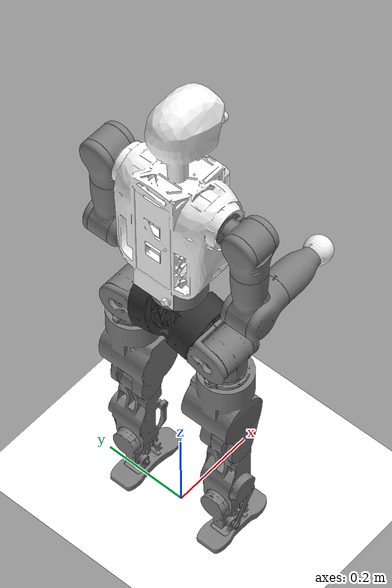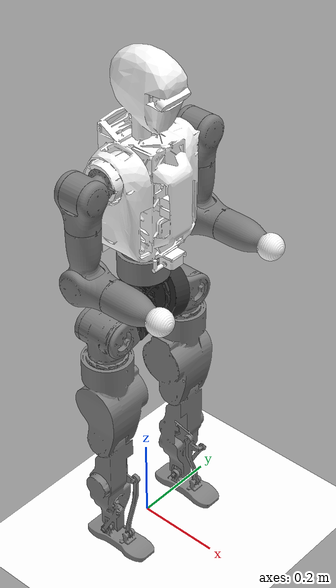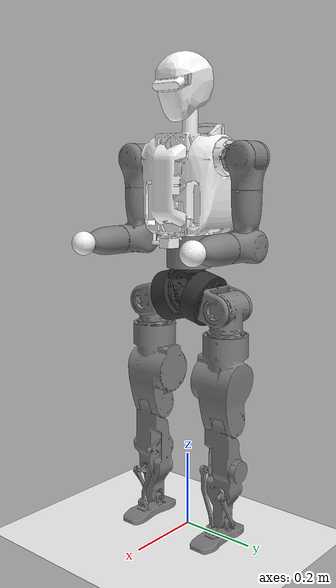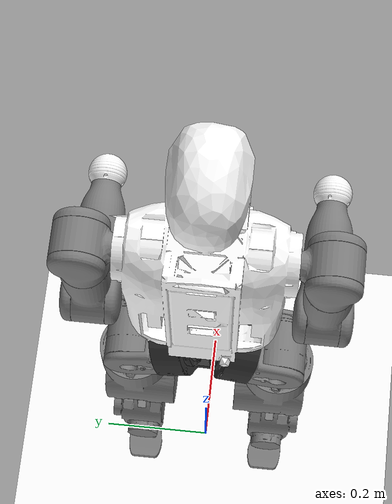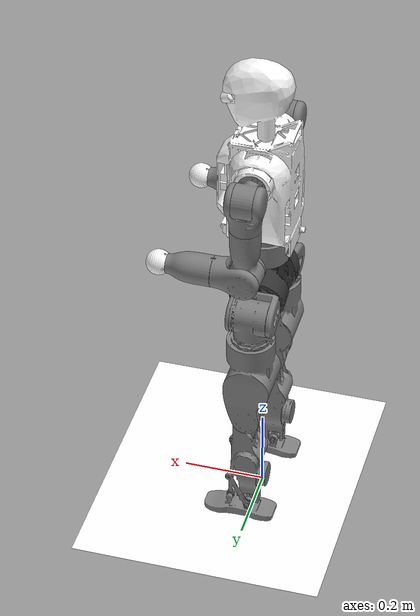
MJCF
<mujoco model="grmini_t1 flat terrain scene">
  <include file="robot_mjx.xml"/>

  <statistic center="0 0 0.7" extent="1.2" meansize="0.04"/>

  <visual>
    <headlight diffuse=".8 .8 .8" ambient=".2 .2 .2" specular="1 1 1"/>
    <rgba force="1 0 0 1"/>
    <global azimuth="140" elevation="-20"/>
    <map force="0.01"/>
    <scale forcewidth="0.3" contactwidth="0.5" contactheight="0.2"/>
    <quality shadowsize="8192"/>
  </visual>

  <asset>
    <texture type="skybox" builtin="gradient" rgb1="1 1 1" rgb2="1 1 1" width="800" height="800"/>
    <texture type="2d" name="groundplane" builtin="checker" mark="edge" rgb1="1 1 1" rgb2="1 1 1"
      markrgb="0 0 0" width="300" height="300"/>
    <material name="groundplane" texture="groundplane" texuniform="true" texrepeat="5 5" reflectance="0"/>
  </asset>

  <worldbody>
    <geom name="floor" size="0 0 0.01" type="plane" material="groundplane"/>
  </worldbody>

  <keyframe>
    <key name="home"
      qpos="
      0 0 0.710
      1 0 0 0
      -0.1 0 0 0.3 0 -0.2
      -0.1 0 0 0.3 0 -0.2
      0
      0 0 0 0 0
      0 0 0 0 0
      "
      ctrl="
      -0.1 0 0 0.3 0 -0.2
      -0.1 0 0 0.3 0 -0.2
      0
      0 0 0 0 0
      0 0 0 0 0
      "/>
    <key name="knees_bent"
      qpos="
      0 0 0.710
      1 0 0 0
      -0.312 0 0 0.669 0 -0.363
      -0.312 0 0 0.669 0 -0.363
      0
      0 0 0 0 0
      0 0 0 0 0
      "
      ctrl="
      -0.312 0 0 0.669 0 -0.363
      -0.312 0 0 0.669 0 -0.363
      0
      0 0 0 0 0
      0 0 0 0 0
    "/>
  </keyframe>
</mujoco>

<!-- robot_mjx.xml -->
<mujoco model="grmini_t1">
  <compiler angle="radian" meshdir="meshes/"/>

  <option iterations="3" ls_iterations="6" timestep=".002" integrator="Euler">
    <flag eulerdamp="disable"/>
  </option>

  <default>
    <default class="grmini_t1">
      <geom condim="1" contype="0" conaffinity="0"/>

      <joint frictionloss="0.5" damping="1"/>
      <position inheritrange="1" kp="100" kv ="5"/>

      <default class="hip">
        <default class="hip_pitch">
          <joint axis="0 1 0" range="-2.617 2.617" actuatorfrcrange="-95 95" armature="0.01017752004"/>
        </default>
        <default class="left_hip_roll">
          <joint axis="1 0 0" range="-0.261 1.57" actuatorfrcrange="-54 54" armature="0.025101925"/>
        </default>
        <default class="right_hip_roll">
          <joint axis="-1 0 0" range="-0.261 1.57" actuatorfrcrange="-54 54" armature="0.025101925"/>
        </default>
        <default class="hip_yaw">
          <joint axis="0 0 1" range="-2.617 2.617" actuatorfrcrange="-54 54" armature="0.01017752004"/>
        </default>
      </default>
      <default class="knee">
        <joint axis="0 1 0" range="-0.0872 2.356" actuatorfrcrange="-95 95" armature="0.025101925"/>
      </default>
      <default class="ankle">
        <default class="ankle_roll">
          <position kp="60"  kv ="3"/>
          <joint axis="1 0 0" range="-0.436 0.436" actuatorfrcrange="-30 30" damping="0.5" armature="0.00721945"/>
        </default>
        <default class="ankle_pitch">
          <position kp="60"  kv ="3"/>
          <joint axis="0 1 0" range="-0.436 0.436" actuatorfrcrange="-30 30" damping="0.5" armature="0.00721945"/>
        </default>
      </default>
      <default class="waist_yaw">
        <joint axis="0 0 1" range="-2.617 2.617" actuatorfrcrange="-54 54" armature="0.01017752004"/>
      </default>
      <default class="shoulder">
        <default class="shoulder_pitch">
          <joint axis="0 1 0" range="-2.966 2.966" actuatorfrcrange="-54 54" armature="0.003609725"/>
        </default>
        <default class="left_shoulder_roll">
          <joint axis="1 0 0" range="-0.174 2.792" actuatorfrcrange="-30 30" armature="0.003609725"/>
        </default>
        <default class="right_shoulder_roll">
          <joint axis="-1 0 0" range="-0.174 2.792" actuatorfrcrange="-30 30" armature="0.003609725"/>
        </default>
        <default class="shoulder_yaw">
          <joint axis="0 0 1" range="-1.832 1.832" actuatorfrcrange="-30 30" armature="0.003609725"/>
        </default>
      </default>
      <default class="elbow">
        <joint axis="0 1 0" range="-0.349 1.658" actuatorfrcrange="-30 30" armature="0.003609725"/>
      </default>
      <default class="wrist">
        <position kp="50" kv ="2"/>
        <joint damping=".2"/>
        <default class="wrist_yaw">
          <joint axis="0 0 1" range="-1.832 1.832" actuatorfrcrange="-30 30" armature="0.003609725"/>
        </default>
      </default>

      <default class="visual">
        <geom group="2" type="mesh" density="0"/>
      </default>
      <default class="collision">
        <geom group="3" rgba="0.8 0.6 0 1" density="0"/>
        <default class="foot">
          <geom size="0.085 0.03 0.005"/>
        </default>
      </default>
      <site group="5" rgba="1 0 0 1"/>
    </default>
  </default>

  <asset>
    <material name="silver" rgba="0.7 0.7 0.7 1"/>
    <material name="black" rgba="0.2 0.2 0.2 1"/>
    <mesh name="base_link" file="base_link.STL"/>
    <mesh name="waist_yaw_link" file="waist_yaw_link.STL"/>
    <mesh name="torso_link" file="torso_link.STL"/>
    <mesh name="imu_link" file="imu_link.STL"/>
    <mesh name="camera_link" file="camera_link.STL"/>
    <mesh name="left_upper_arm_pitch_link" file="left_upper_arm_pitch_link.STL"/>
    <mesh name="left_upper_arm_roll_link" file="left_upper_arm_roll_link.STL"/>
    <mesh name="left_upper_arm_yaw_link" file="left_upper_arm_yaw_link.STL"/>
    <mesh name="left_lower_arm_pitch_link" file="left_lower_arm_pitch_link.STL"/>
    <mesh name="left_hand_yaw_link" file="left_hand_yaw_link.STL"/>
    <mesh name="left_end_effector_link" file="left_end_effector_link.STL"/>
    <mesh name="right_upper_arm_pitch_link" file="right_upper_arm_pitch_link.STL"/>
    <mesh name="right_upper_arm_roll_link" file="right_upper_arm_roll_link.STL"/>
    <mesh name="right_upper_arm_yaw_link" file="right_upper_arm_yaw_link.STL"/>
    <mesh name="right_lower_arm_pitch_link" file="right_lower_arm_pitch_link.STL"/>
    <mesh name="right_hand_yaw_link" file="right_hand_yaw_link.STL"/>
    <mesh name="right_end_effector_link" file="right_end_effector_link.STL"/>
    <mesh name="left_thigh_pitch_link" file="left_thigh_pitch_link.STL"/>
    <mesh name="left_thigh_roll_link" file="left_thigh_roll_link.STL"/>
    <mesh name="left_thigh_yaw_link" file="left_thigh_yaw_link.STL"/>
    <mesh name="left_shank_pitch_link" file="left_shank_pitch_link.STL"/>
    <mesh name="left_foot_roll_link" file="left_foot_roll_link.STL"/>
    <mesh name="left_foot_pitch_link" file="left_foot_pitch_link.STL"/>
    <mesh name="right_thigh_pitch_link" file="right_thigh_pitch_link.STL"/>
    <mesh name="right_thigh_roll_link" file="right_thigh_roll_link.STL"/>
    <mesh name="right_thigh_yaw_link" file="right_thigh_yaw_link.STL"/>
    <mesh name="right_shank_pitch_link" file="right_shank_pitch_link.STL"/>
    <mesh name="right_foot_roll_link" file="right_foot_roll_link.STL"/>
    <mesh name="right_foot_pitch_link" file="right_foot_pitch_link.STL"/>
  </asset>

  <worldbody>
    <body name="base_link" pos="0 0 0.710" childclass="grmini_t1">
        <camera name="track" pos="1.734 -1.135 .35" xyaxes="0.552 0.834 -0.000 -0.170 0.112 0.979" mode="trackcom"/>
        <inertial pos="-0.00036119 0 -0.05865679" quat="1 0 -0.000399148 0" mass="3.136" diaginertia="0.01354598 0.01005144 0.00953678"/>
        <freejoint name="floating_base_joint"/>
        <geom class="visual" material="black" mesh="base_link"/>
        <site name="imu" size="0.01" pos="0.01 0 -0.0536"/>
        <body name="waist_yaw_link" pos="0 0 0.015">
            <inertial pos="0.00392916 -0.00032484 0.196302" quat="0.999809 -0.00128852 0.0194931 0.000508804" mass="8.8555" diaginertia="0.122593 0.113694 0.0393338"/>
            <joint name="waist_yaw_joint" class="waist_yaw"/>
            <geom pos="0 0 0.2604" quat="1 0 0 0" type="mesh" contype="0" conaffinity="0" group="2" density="0" rgba="1 1 1 1" mesh="torso_link"/>
            <geom pos="0.07875 0 0.0536" quat="1 0 0 0" type="mesh" contype="0" conaffinity="0" group="2" density="0" rgba="1 1 1 1" mesh="imu_link"/>
            <geom pos="0.071504 0 0.4402" quat="0.965926 0 0.25882 0" type="mesh" contype="0" conaffinity="0" group="2" density="0" rgba="1 1 1 1" mesh="camera_link"/>
            <geom class="visual" mesh="waist_yaw_link"/>
            <geom pos="0 0 0.2" name="waist_yaw_link_collision" class="collision" type="box" size="0.07 0.1 0.28"/>
            <body name="left_upper_arm_pitch_link" pos="0 0.09365 0.2604">
                <inertial pos="-0.00010549 0.0460864 8.03e-06" quat="0.495115 0.500204 -0.50005 0.504586" mass="0.8842" diaginertia="0.00184165 0.00183028 0.000625398"/>
                <joint name="left_shoulder_pitch_joint" class="shoulder_pitch"/>
                <geom class="visual" mesh="left_upper_arm_pitch_link"/>
                <body name="left_upper_arm_roll_link" pos="0 0.082 0">
                    <inertial pos="0.00487758 0.00044474 -0.0431393" quat="0.708386 0.0373823 0.0395157 0.703726" mass="0.714" diaginertia="0.00181005 0.00172856 0.000400062"/>
                    <joint name="left_shoulder_roll_joint" class="left_shoulder_roll"/>
                    <geom class="visual" mesh="left_upper_arm_roll_link"/>
                    <geom pos="0 0 -0.2" name="left_arm_collision" class="collision" type="sphere" size="0.060"/>
                    <body name="left_upper_arm_yaw_link" pos="0 0 -0.105">
                        <inertial pos="-9.046e-05 -0.00031442 -0.0556749" quat="0.988512 -0.00409726 -0.000239432 0.151085" mass="0.914" diaginertia="0.00309435 0.00308521 0.000737412"/>
                        <joint name="left_shoulder_yaw_joint" class="shoulder_yaw"/>
                        <geom class="visual" mesh="left_upper_arm_yaw_link"/>
                        <body name="left_lower_arm_pitch_link" pos="0 0 -0.105" quat="0.707105 0 -0.707108 0">
                            <inertial pos="-0.00041353 0.00475782 -0.0429711" quat="0.998474 -0.0548672 -0.0019523 -0.00593138" mass="0.712" diaginertia="0.00180547 0.00172538 0.000400887"/>
                            <joint name="left_elbow_pitch_joint" class="elbow"/>
                            <geom class="visual" mesh="left_lower_arm_pitch_link"/>
                            <body name="left_hand_yaw_link" pos="0 0 -0.105">
                                <inertial pos="-9.51713e-05 1.29434e-06 -0.0246028" quat="0.451748 -0.0015129 -0.000673209 0.892144" mass="0.57701" diaginertia="0.00130576 0.00130295 0.000411831"/>
                                <joint name="left_wrist_yaw_joint" class="wrist_yaw"/>
                                <geom class="visual" mesh="left_hand_yaw_link"/>
                                <geom pos="0 0 -0.08" quat="1 0 0 0" type="mesh" contype="0" conaffinity="0" group="2" density="0" rgba="1 1 1 1" mesh="left_end_effector_link"/>
                                <site name="left_palm" pos="0 0 -0.08" size="0.01"/>
                                <geom pos="0 0 -0.1" name="left_hand_collision" class="collision" type="sphere" size="0.030"/>
                            </body>
                        </body>
                    </body>
                </body>
            </body>
            <body name="right_upper_arm_pitch_link" pos="0 -0.09365 0.2604">
                <inertial pos="-0.000108 -0.0460864 8.05e-06" quat="0.494174 0.488789 -0.51052 0.506209" mass="0.8842" diaginertia="0.00184155 0.00183027 0.000625685"/>
                <joint name="right_shoulder_pitch_joint" class="shoulder_pitch"/>
                <geom class="visual" mesh="right_upper_arm_pitch_link"/>
                <body name="right_upper_arm_roll_link" pos="0 -0.082 0">
                    <inertial pos="0.00511059 -0.00047879 -0.0434469" quat="0.699891 0.0420404 0.0396474 0.711908" mass="0.711" diaginertia="0.00179303 0.00172216 0.000390187"/>
                    <joint name="right_shoulder_roll_joint" class="right_shoulder_roll"/>
                    <geom class="visual" mesh="right_upper_arm_roll_link"/>
                    <geom pos="0 0 -0.2" name="right_arm_collision" class="collision" type="sphere" size="0.060"/>
                    <body name="right_upper_arm_yaw_link" pos="0 0 -0.105">
                        <inertial pos="-9.057e-05 0.00031679 -0.0556758" quat="0.989909 0.00414525 -7.3143e-05 -0.141647" mass="0.914" diaginertia="0.00309365 0.00308561 0.000737058"/>
                        <joint name="right_shoulder_yaw_joint" class="shoulder_yaw"/>
                        <geom class="visual" mesh="right_upper_arm_yaw_link"/>
                        <body name="right_lower_arm_pitch_link" pos="0 0 -0.105" quat="0.707105 0 -0.707108 0">
                            <inertial pos="-0.00034586 -0.00474975 -0.0431673" quat="0.998479 0.0549162 -0.00170368 0.00452907" mass="0.712" diaginertia="0.00180972 0.00172691 0.0003979"/>
                            <joint name="right_elbow_pitch_joint" class="elbow"/>
                            <geom class="visual" mesh="right_lower_arm_pitch_link"/>
                            <body name="right_hand_yaw_link" pos="0 0 -0.105">
                                <inertial pos="-9.52307e-05 0 -0.0245736" quat="0.445169 -0.00154029 -0.000693026 0.895445" mass="0.5767" diaginertia="0.00128997 0.00128717 0.000402601"/>
                                <joint name="right_wrist_yaw_joint" class="wrist_yaw"/>
                                <geom class="visual" mesh="right_hand_yaw_link"/>
                                <geom pos="0 0 -0.08" quat="1 0 0 0" type="mesh" contype="0" conaffinity="0" group="2" density="0" rgba="1 1 1 1" mesh="right_end_effector_link"/>
                                <site name="right_palm" pos="0 0 -0.08" size="0.01"/>
                                <geom pos="0 0 -0.1" name="right_hand_collision" class="collision" type="sphere" size="0.030"/>
                            </body>
                        </body>
                    </body>
                </body>
            </body>
        </body>
    <body name="left_thigh_pitch_link" pos="0 0.048521 -0.076847" quat="0.991445 -0.130526 0 0">
        <inertial pos="0.00469728 0.0370354 0.00024962" quat="0.586057 0.394562 -0.588457 0.393163" mass="1.3008" diaginertia="0.00238065 0.00207849 0.00131154"/>
        <joint name="left_hip_pitch_joint" class="hip_pitch"/>
        <geom class="visual" mesh="left_thigh_pitch_link"/>
        <body name="left_thigh_roll_link" pos="0 0.074 0" quat="0.991445 0.130526 0 0">
            <inertial pos="0.00183717 -4.3e-06 -0.0321936" quat="0.999749 3.9204e-05 0.0224234 -2.26631e-05" mass="1.359" diaginertia="0.00302075 0.00288693 0.00125139"/>
            <joint name="left_hip_roll_joint" class="left_hip_roll"/>
            <geom class="visual" mesh="left_thigh_roll_link"/>
            <geom name="left_thigh" class="collision" type="capsule" size="0.07" fromto="0.0 -0.01 0 0.0 -0.01 -0.2"/>
            <body name="left_thigh_yaw_link" pos="0 0 -0.0875">
                <inertial pos="0.00216478 -0.00975305 -0.0835706" quat="0.591547 -0.0398546 0.00911377 0.805234" mass="3.452" diaginertia="0.016329 0.015951 0.00542247"/>
                <joint name="left_hip_yaw_joint" class="hip_yaw"/>
                <geom class="visual" mesh="left_thigh_yaw_link"/>
                <body name="left_shank_pitch_link" pos="0 0 -0.2031">
                    <inertial pos="0.00278302 0.00416562 -0.135619" quat="0.923116 -0.00745391 0.0122662 0.384253" mass="2.335" diaginertia="0.0138036 0.0137193 0.00176335"/>
                    <joint name="left_knee_pitch_joint" class="knee"/>
                    <geom class="visual" mesh="left_shank_pitch_link"/>
                    <geom name="left_shin" class="collision" type="capsule" size="0.07" fromto="0.02 0 0 0.02 0 -0.25"/>
                    <body name="left_foot_roll_link" pos="0 0 -0.28">
                        <inertial pos="0 0.001805 0" quat="0.707107 0 0 0.707107" mass="0.11173" diaginertia="2.876e-05 2.445e-05 1.162e-05"/>
                        <joint name="left_ankle_roll_joint" class="ankle_roll"/>
                        <geom class="visual" mesh="left_foot_roll_link"/>
                        <body name="left_foot_pitch_link">
                            <site name="left_foot" rgba="1 0 0 1"/>
                            <inertial pos="0.023434 -0.00015234 -0.030677" quat="-0.000812256 0.705674 -0.00501102 0.708518" mass="0.391" diaginertia="0.000895276 0.00083368 0.000140403"/>
                            <joint name="left_ankle_pitch_joint" class="ankle_pitch"/>
                            <geom class="visual" mesh="left_foot_pitch_link"/>
                            <geom name="left_foot" class="foot" pos="0.025 0 -0.035" size="0.08 0.03 0.008" type="box"/>
                        </body>
                    </body>
                </body>
            </body>
      </body>
    </body>
    <body name="right_thigh_pitch_link" pos="0 -0.048521 -0.076847" quat="0.991445 0.130526 0 0">
        <inertial pos="0.0046972 -0.0370354 0.0002497" quat="0.394584 0.586067 -0.393152 0.588439" mass="1.3007" diaginertia="0.00238064 0.00207846 0.00131154"/>
        <joint name="right_hip_pitch_joint" class="hip_pitch"/>
        <geom class="visual" mesh="right_thigh_pitch_link"/>
        <body name="right_thigh_roll_link" pos="0 -0.074 0" quat="0.991445 -0.130526 0 0">
            <inertial pos="0.00184399 -4.33e-06 -0.0321936" quat="0.999702 -0.000215194 0.0223656 -0.00979228" mass="1.359" diaginertia="0.00302078 0.00288684 0.00125138"/>
            <joint name="right_hip_roll_joint" class="right_hip_roll"/>
            <geom class="visual" mesh="right_thigh_roll_link"/>
            <geom name="right_thigh" class="collision" type="capsule" size="0.07" fromto="0.0 0.01 0 0.0 0.01 -0.2"/>
            <body name="right_thigh_yaw_link" pos="0 0 -0.0875">
                <inertial pos="0.00216082 0.0097519 -0.0835711" quat="0.816219 0.0097719 -0.0399389 0.576277" mass="3.4517" diaginertia="0.0163407 0.0159406 0.00542163"/>
                <joint name="right_hip_yaw_joint" class="hip_yaw"/>
                <geom class="visual" mesh="right_thigh_yaw_link"/>
                <body name="right_shank_pitch_link" pos="0 0 -0.2031">
                    <inertial pos="0.00280042 -0.00416601 -0.135639" quat="0.392916 0.0123042 -0.00742701 0.919462" mass="2.3362" diaginertia="0.0138085 0.0137239 0.00176871"/>
                    <joint name="right_knee_pitch_joint" class="knee"/>
                    <geom class="visual" mesh="right_shank_pitch_link"/>
                    <geom name="right_shin" class="collision" type="capsule" size="0.07" fromto="0.02 0 0 0.02 0 -0.25"/>
                    <body name="right_foot_roll_link" pos="0 0 -0.28">
                        <inertial pos="0 -0.00180591 0" quat="0.5 0.5 -0.5 0.5" mass="0.11173" diaginertia="2.876e-05 2.445e-05 1.162e-05"/>
                        <joint name="right_ankle_roll_joint" class="ankle_roll"/>
                        <geom class="visual" mesh="right_foot_roll_link"/>
                        <body name="right_foot_pitch_link">
                            <site name="right_foot" pos="0 0 0"/>
                            <inertial pos="0.0239094 0.00023117 -0.0301994" quat="-0.00422828 0.703504 0.000787377 0.710678" mass="0.398" diaginertia="0.000900889 0.000843793 0.000145867"/>
                            <joint name="right_ankle_pitch_joint" class="ankle_pitch"/>
                            <geom class="visual" mesh="right_foot_pitch_link"/>
                            <geom name="right_foot" class="foot" pos="0.025 0 -0.035" size="0.08 0.03 0.008" type="box"/>
                        </body>
                    </body>
                </body>
            </body>
        </body>
    </body>
    </body>
  </worldbody>
  <contact>
    <!-- Feet floor. -->
    <pair name="left_foot_floor" geom1="left_foot" geom2="floor" condim="3" friction="0.6 0.6"/>
    <pair name="right_foot_floor" geom1="right_foot" geom2="floor" condim="3" friction="0.6 0.6"/>
    <!-- Hand floor -->
    <pair name="left_hand_floor" geom1="left_hand_collision" geom2="floor" condim="3" friction="0.6 0.6"/>
    <pair name="right_hand_floor" geom1="right_hand_collision" geom2="floor" condim="3" friction="0.6 0.6"/>

    <!-- body floor -->
    <pair name="body_floor" geom1="waist_yaw_link_collision" geom2="floor" condim="3" friction="0.6 0.6"/>

    <!-- elbow floor -->
    <pair name="left_elbow_floor" geom1="left_arm_collision" geom2="floor" condim="3" friction="0.6 0.6"/>
    <pair name="right_elbow_floor" geom1="right_arm_collision" geom2="floor" condim="3" friction="0.6 0.6"/>

    <!-- elbow body -->
    <pair name="left_elbow_body" geom1="left_arm_collision" geom2="waist_yaw_link_collision" condim="3" friction="0.6 0.6"/>
    <pair name="right_elbow_body" geom1="right_arm_collision" geom2="waist_yaw_link_collision" condim="3" friction="0.6 0.6"/>

    <!-- Feet / shin (opposite side) -->
    <pair name="left_foot_right_shin" geom1="left_foot" geom2="right_shin" condim="1"/>
    <pair name="right_foot_left_shin" geom1="right_foot" geom2="left_shin" condim="1"/>

    <!-- shin / floor -->
    <pair name="right_shin_floor" geom1="floor" geom2="right_shin" condim="1" friction="0.6 0.6"/>
    <pair name="left_shin_floor" geom1="floor" geom2="left_shin" condim="1" friction="0.6 0.6"/>

    <!-- Hand/thigh (same side) -->
    <pair name="left_hand_thigh" geom1="left_hand_collision" geom2="left_thigh" condim="1"/>
    <pair name="right_hand_thigh" geom1="right_hand_collision" geom2="right_thigh" condim="1"/>

    <!-- thigh / floor -->
    <pair name="left_thigh_floor" geom1="floor" geom2="left_thigh" condim="1" friction="0.6 0.6"/>
    <pair name="right_thigh_floor" geom1="floor" geom2="right_thigh" condim="1" friction="0.6 0.6"/>

    <!-- Left shin / Right shin. -->
    <pair name="left_shin_right_shin" geom1="left_shin" geom2="right_shin" condim="1"/>
  </contact>

  <actuator>
    <position class="hip_pitch" name="left_hip_pitch_joint" joint="left_hip_pitch_joint"/>
    <position class="left_hip_roll" name="left_hip_roll_joint" joint="left_hip_roll_joint"/>
    <position class="hip_yaw" name="left_hip_yaw_joint" joint="left_hip_yaw_joint"/>
    <position class="knee" name="left_knee_pitch_joint" joint="left_knee_pitch_joint"/>
    <position class="ankle_pitch" name="left_ankle_pitch_joint" joint="left_ankle_pitch_joint"/>
    <position class="ankle_roll" name="left_ankle_roll_joint" joint="left_ankle_roll_joint"/>

    <position class="hip_pitch" name="right_hip_pitch_joint" joint="right_hip_pitch_joint"/>
    <position class="right_hip_roll" name="right_hip_roll_joint" joint="right_hip_roll_joint"/>
    <position class="hip_yaw" name="right_hip_yaw_joint" joint="right_hip_yaw_joint"/>
    <position class="knee" name="right_knee_pitch_joint" joint="right_knee_pitch_joint"/>
    <position class="ankle_pitch" name="right_ankle_pitch_joint" joint="right_ankle_pitch_joint"/>
    <position class="ankle_roll" name="right_ankle_roll_joint" joint="right_ankle_roll_joint"/>

    <position class="waist_yaw" name="waist_yaw_joint" joint="waist_yaw_joint"/>

    <position class="shoulder_pitch" name="left_shoulder_pitch_joint" joint="left_shoulder_pitch_joint"/>
    <position class="left_shoulder_roll" name="left_shoulder_roll_joint" joint="left_shoulder_roll_joint"/>
    <position class="shoulder_yaw" name="left_shoulder_yaw_joint" joint="left_shoulder_yaw_joint"/>
    <position class="elbow" name="left_elbow_pitch_joint" joint="left_elbow_pitch_joint"/>
    <position class="wrist_yaw" name="left_wrist_yaw_joint" joint="left_wrist_yaw_joint"/>

    <position class="shoulder_pitch" name="right_shoulder_pitch_joint" joint="right_shoulder_pitch_joint"/>
    <position class="right_shoulder_roll" name="right_shoulder_roll_joint" joint="right_shoulder_roll_joint"/>
    <position class="shoulder_yaw" name="right_shoulder_yaw_joint" joint="right_shoulder_yaw_joint"/>
    <position class="elbow" name="right_elbow_pitch_joint" joint="right_elbow_pitch_joint"/>
    <position class="wrist_yaw" name="right_wrist_yaw_joint" joint="right_wrist_yaw_joint"/>
  </actuator>

  <sensor>
    <velocimeter site="imu" name="local_linvel_base_link"/>
    <accelerometer site="imu" name="accelerometer_base_link"/>
    <gyro site="imu" name="gyro_base_link"/>
    <framezaxis objtype="site" objname="imu" name="upvector_base_link"/>
    <framexaxis objtype="site" objname="imu" name="forwardvector_base_link"/>
    <framequat objtype="site" objname="imu" name="orientation_base_link"/>
    <framelinvel objtype="site" objname="imu" name="global_linvel_base_link"/>
    <frameangvel objtype="site" objname="imu" name="global_angvel_base_link"/>
    <framelinvel objtype="site" objname="left_foot" name="left_foot_global_linvel"/>
    <framelinvel objtype="site" objname="right_foot" name="right_foot_global_linvel"/>
    <framezaxis objtype="site" objname="left_foot" name="left_foot_upvector"/>
    <framezaxis objtype="site" objname="right_foot" name="right_foot_upvector"/>
    <force name="left_foot_force" site="left_foot"/>
    <force name="right_foot_force" site="right_foot"/>
  </sensor>
</mujoco>
